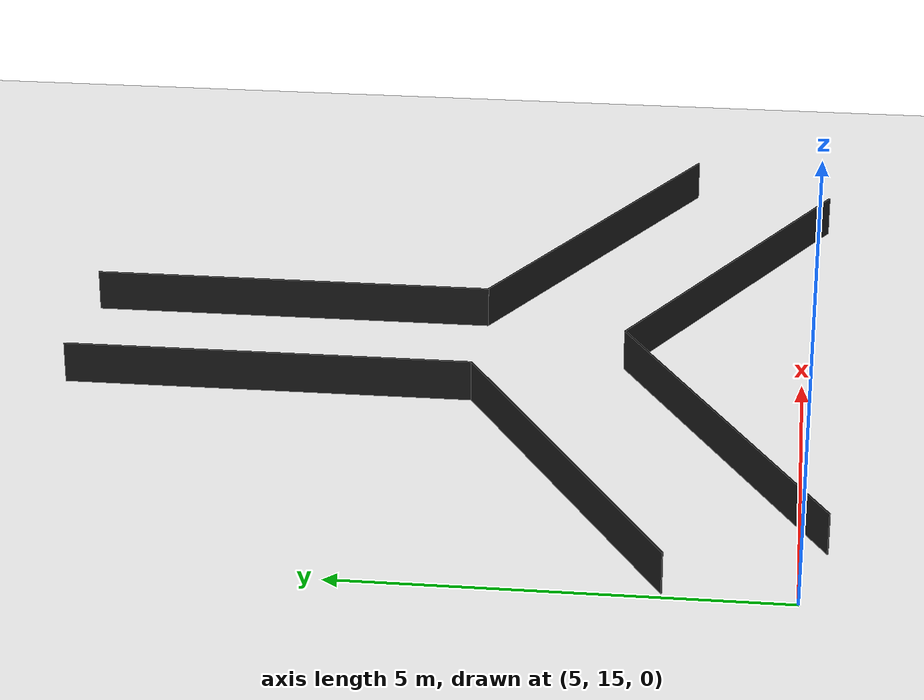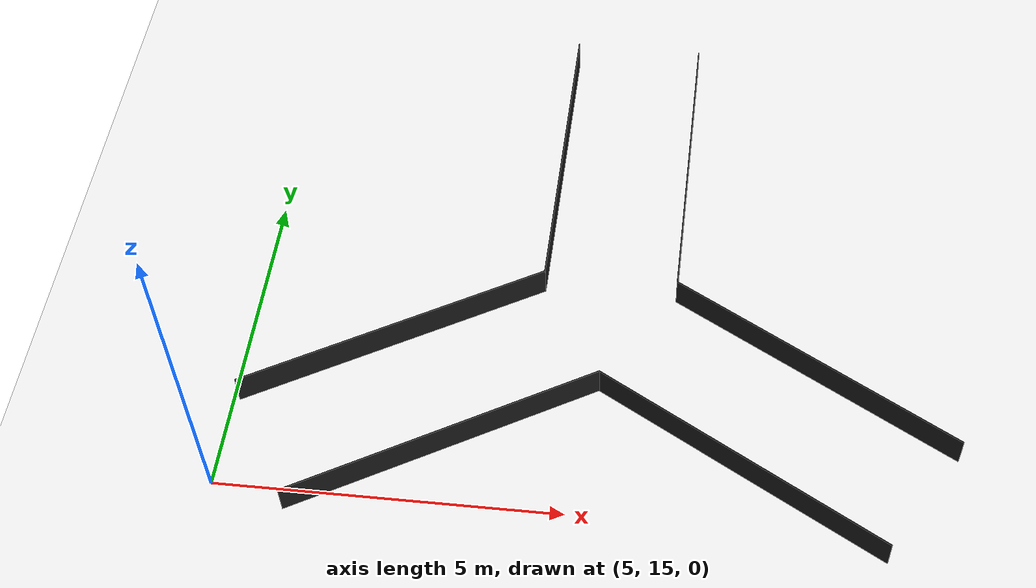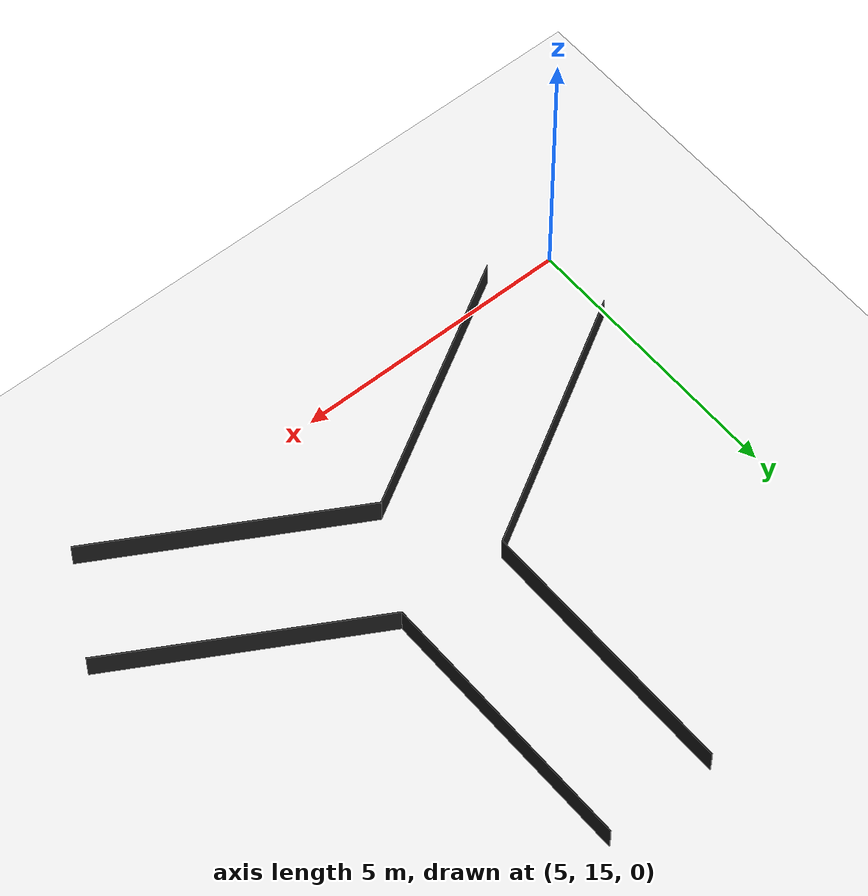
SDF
<sdf version="1.6">
 <world name="default">
  <model name="ground_plane">
   <static>1</static>
   <link name="link">
    <collision name="collision">
     <geometry><plane><normal>0 0 1</normal><size>100 100</size></plane></geometry>
     <surface><friction><ode><mu>100</mu><mu2>50</mu2></ode></friction></surface>
    </collision>
    <visual name="visual">
     <cast_shadows>0</cast_shadows>
     <geometry><plane><normal>0 0 1</normal><size>100 100</size></plane></geometry>
     <material>
      <script><uri>file://media/materials/scripts/gazebo.material</uri><name>Gazebo/White</name></script>
     </material>
    </visual>
   </link>
  </model>
  <model name="T_camber_mod">
   <link name="link">
    <inertial>
     <mass>1</mass>
     <inertia>
      <ixx>0.166667</ixx>
      <ixy>0</ixy>
      <ixz>0</ixz>
      <iyy>0.166667</iyy>
      <iyz>0</iyz>
      <izz>0.166667</izz>
     </inertia>
    </inertial>
    <pose>8.67982 0.164587 0 0 -0 0</pose>
    <visual name="ModelPreview_1::link::visual_2">
     <geometry><box><size>0.015 4.8453 0.5</size></box></geometry>
     <material>
      <script><name>Gazebo/FlatBlack</name><uri>file://media/materials/scripts/gazebo.material</uri></script>
      <shader type="pixel"><normal_map>__default__</normal_map></shader>
      <ambient>0.1 0.1 0.1 1</ambient>
      <diffuse>0.1 0.1 0.1 1</diffuse>
      <specular>0.01 0.01 0.01 1</specular>
      <emissive>0 0 0 1</emissive>
     </material>
     <pose>2 0 0 0 -0 0</pose>
    </visual>
    <visual name="visual">
     <geometry><box><size>0.015 4.8453 0.5</size></box></geometry>
     <material>
      <script><name>Gazebo/FlatBlack</name><uri>file://media/materials/scripts/gazebo.material</uri></script>
      <shader type="pixel"><normal_map>__default__</normal_map></shader>
      <ambient>0.1 0.1 0.1 1</ambient>
      <diffuse>0.1 0.1 0.1 1</diffuse>
      <specular>0.01 0.01 0.01 1</specular>
      <emissive>0 0 0 1</emissive>
     </material>
    </visual>
    <collision name="collision">
     <geometry><box><size>0.015 4.8453 0.5</size></box></geometry>
     <surface>
      <friction>
       <ode><mu>1</mu><mu2>1</mu2><fdir1>0 0 0</fdir1><slip1>0</slip1><slip2>0</slip2></ode>
       <torsional>
        <coefficient>1</coefficient>
        <patch_radius>0</patch_radius>
        <surface_radius>0</surface_radius>
        <use_patch_radius>1</use_patch_radius>
        <ode><slip>0</slip></ode>
       </torsional>
      </friction>
      <bounce><restitution_coefficient>0</restitution_coefficient><threshold>1e+06</threshold></bounce>
      <contact>
       <collide_without_contact>0</collide_without_contact>
       <collide_without_contact_bitmask>1</collide_without_contact_bitmask>
       <collide_bitmask>1</collide_bitmask>
       <ode>
        <soft_cfm>0</soft_cfm>
        <soft_erp>0.2</soft_erp>
        <kp>1e+13</kp>
        <kd>1</kd>
        <max_vel>0.01</max_vel>
        <min_depth>0</min_depth>
       </ode>
       <bullet>
        <split_impulse>1</split_impulse>
        <split_impulse_penetration_threshold>-0.01</split_impulse_penetration_threshold>
        <soft_cfm>0</soft_cfm>
        <soft_erp>0.2</soft_erp>
        <kp>1e+13</kp>
        <kd>1</kd>
       </bullet>
      </contact>
     </surface>
    </collision>
    <collision name="collision_1">
     <pose>2 0 0 0 -0 0</pose>
     <geometry><box><size>0.015 4.8453 0.5</size></box></geometry>
     <surface>
      <friction>
       <ode><mu>1</mu><mu2>1</mu2><fdir1>0 0 0</fdir1><slip1>0</slip1><slip2>0</slip2></ode>
       <torsional>
        <coefficient>1</coefficient>
        <patch_radius>0</patch_radius>
        <surface_radius>0</surface_radius>
        <use_patch_radius>1</use_patch_radius>
        <ode><slip>0</slip></ode>
       </torsional>
      </friction>
      <bounce><restitution_coefficient>0</restitution_coefficient><threshold>1e+06</threshold></bounce>
      <contact>
       <collide_without_contact>0</collide_without_contact>
       <collide_without_contact_bitmask>1</collide_without_contact_bitmask>
       <collide_bitmask>1</collide_bitmask>
       <ode>
        <soft_cfm>0</soft_cfm>
        <soft_erp>0.2</soft_erp>
        <kp>1e+13</kp>
        <kd>1</kd>
        <max_vel>0.01</max_vel>
        <min_depth>0</min_depth>
       </ode>
       <bullet>
        <split_impulse>1</split_impulse>
        <split_impulse_penetration_threshold>-0.01</split_impulse_penetration_threshold>
        <soft_cfm>0</soft_cfm>
        <soft_erp>0.2</soft_erp>
        <kp>1e+13</kp>
        <kd>1</kd>
       </bullet>
      </contact>
     </surface>
    </collision>
   </link>
   <link name="link_clone_0_clone">
    <inertial>
     <mass>1</mass>
     <inertia>
      <ixx>0.166667</ixx>
      <ixy>0</ixy>
      <ixz>0</ixz>
      <iyy>0.166667</iyy>
      <iyz>0</iyz>
      <izz>0.166667</izz>
     </inertia>
    </inertial>
    <pose>12.7746 -3.46264 0 5e-06 -0 -2.0944</pose>
    <visual name="visual_2">
     <geometry><box><size>0.015 4.8453 0.5</size></box></geometry>
     <material>
      <script><name>Gazebo/FlatBlack</name><uri>file://media/materials/scripts/gazebo.material</uri></script>
      <shader type="pixel"><normal_map>__default__</normal_map></shader>
      <ambient>0.1 0.1 0.1 1</ambient>
      <diffuse>0.1 0.1 0.1 1</diffuse>
      <specular>0.01 0.01 0.01 1</specular>
      <emissive>0 0 0 1</emissive>
     </material>
     <pose>2 0 0 0 -0 0</pose>
    </visual>
    <visual name="visual">
     <geometry><box><size>0.015 4.8453 0.5</size></box></geometry>
     <material>
      <script><name>Gazebo/FlatBlack</name><uri>file://media/materials/scripts/gazebo.material</uri></script>
      <shader type="pixel"><normal_map>__default__</normal_map></shader>
      <ambient>0.1 0.1 0.1 1</ambient>
      <diffuse>0.1 0.1 0.1 1</diffuse>
      <specular>0.01 0.01 0.01 1</specular>
      <emissive>0 0 0 1</emissive>
     </material>
    </visual>
    <collision name="collision">
     <geometry><box><size>0.015 4.8453 0.5</size></box></geometry>
     <surface>
      <friction>
       <ode><mu>1</mu><mu2>1</mu2><fdir1>0 0 0</fdir1><slip1>0</slip1><slip2>0</slip2></ode>
       <torsional>
        <coefficient>1</coefficient>
        <patch_radius>0</patch_radius>
        <surface_radius>0</surface_radius>
        <use_patch_radius>1</use_patch_radius>
        <ode><slip>0</slip></ode>
       </torsional>
      </friction>
      <bounce><restitution_coefficient>0</restitution_coefficient><threshold>1e+06</threshold></bounce>
      <contact>
       <collide_without_contact>0</collide_without_contact>
       <collide_without_contact_bitmask>1</collide_without_contact_bitmask>
       <collide_bitmask>1</collide_bitmask>
       <ode>
        <soft_cfm>0</soft_cfm>
        <soft_erp>0.2</soft_erp>
        <kp>1e+13</kp>
        <kd>1</kd>
        <max_vel>0.01</max_vel>
        <min_depth>0</min_depth>
       </ode>
       <bullet>
        <split_impulse>1</split_impulse>
        <split_impulse_penetration_threshold>-0.01</split_impulse_penetration_threshold>
        <soft_cfm>0</soft_cfm>
        <soft_erp>0.2</soft_erp>
        <kp>1e+13</kp>
        <kd>1</kd>
       </bullet>
      </contact>
     </surface>
    </collision>
    <collision name="collision_1">
     <pose>2 0 0 0 -0 0</pose>
     <geometry><box><size>0.015 4.8453 0.5</size></box></geometry>
     <surface>
      <friction>
       <ode><mu>1</mu><mu2>1</mu2><fdir1>0 0 0</fdir1><slip1>0</slip1><slip2>0</slip2></ode>
       <torsional>
        <coefficient>1</coefficient>
        <patch_radius>0</patch_radius>
        <surface_radius>0</surface_radius>
        <use_patch_radius>1</use_patch_radius>
        <ode><slip>0</slip></ode>
       </torsional>
      </friction>
      <bounce><restitution_coefficient>0</restitution_coefficient><threshold>1e+06</threshold></bounce>
      <contact>
       <collide_without_contact>0</collide_without_contact>
       <collide_without_contact_bitmask>1</collide_without_contact_bitmask>
       <collide_bitmask>1</collide_bitmask>
       <ode>
        <soft_cfm>0</soft_cfm>
        <soft_erp>0.2</soft_erp>
        <kp>1e+13</kp>
        <kd>1</kd>
        <max_vel>0.01</max_vel>
        <min_depth>0</min_depth>
       </ode>
       <bullet>
        <split_impulse>1</split_impulse>
        <split_impulse_penetration_threshold>-0.01</split_impulse_penetration_threshold>
        <soft_cfm>0</soft_cfm>
        <soft_erp>0.2</soft_erp>
        <kp>1e+13</kp>
        <kd>1</kd>
       </bullet>
      </contact>
     </surface>
    </collision>
   </link>
   <link name="link_clone_clone">
    <inertial>
     <mass>1</mass>
     <inertia>
      <ixx>0.166667</ixx>
      <ixy>0</ixy>
      <ixz>0</ixz>
      <iyy>0.166667</iyy>
      <iyz>0</iyz>
      <izz>0.166667</izz>
     </inertia>
    </inertial>
    <pose>7.58495 -5.19374 0 5e-06 -0 2.0944</pose>
    <visual name="visual_2">
     <geometry><box><size>0.015 4.8453 0.5</size></box></geometry>
     <material>
      <script><name>Gazebo/FlatBlack</name><uri>file://media/materials/scripts/gazebo.material</uri></script>
      <shader type="pixel"><normal_map>__default__</normal_map></shader>
      <ambient>0.1 0.1 0.1 1</ambient>
      <diffuse>0.1 0.1 0.1 1</diffuse>
      <specular>0.01 0.01 0.01 1</specular>
      <emissive>0 0 0 1</emissive>
     </material>
     <pose>2 0 0 0 -0 0</pose>
    </visual>
    <visual name="visual">
     <geometry><box><size>0.015 4.8453 0.5</size></box></geometry>
     <material>
      <script><name>Gazebo/FlatBlack</name><uri>file://media/materials/scripts/gazebo.material</uri></script>
      <shader type="pixel"><normal_map>__default__</normal_map></shader>
      <ambient>0.1 0.1 0.1 1</ambient>
      <diffuse>0.1 0.1 0.1 1</diffuse>
      <specular>0.01 0.01 0.01 1</specular>
      <emissive>0 0 0 1</emissive>
     </material>
    </visual>
    <collision name="collision">
     <geometry><box><size>0.015 4.8453 0.5</size></box></geometry>
     <surface>
      <friction>
       <ode><mu>1</mu><mu2>1</mu2><fdir1>0 0 0</fdir1><slip1>0</slip1><slip2>0</slip2></ode>
       <torsional>
        <coefficient>1</coefficient>
        <patch_radius>0</patch_radius>
        <surface_radius>0</surface_radius>
        <use_patch_radius>1</use_patch_radius>
        <ode><slip>0</slip></ode>
       </torsional>
      </friction>
      <bounce><restitution_coefficient>0</restitution_coefficient><threshold>1e+06</threshold></bounce>
      <contact>
       <collide_without_contact>0</collide_without_contact>
       <collide_without_contact_bitmask>1</collide_without_contact_bitmask>
       <collide_bitmask>1</collide_bitmask>
       <ode>
        <soft_cfm>0</soft_cfm>
        <soft_erp>0.2</soft_erp>
        <kp>1e+13</kp>
        <kd>1</kd>
        <max_vel>0.01</max_vel>
        <min_depth>0</min_depth>
       </ode>
       <bullet>
        <split_impulse>1</split_impulse>
        <split_impulse_penetration_threshold>-0.01</split_impulse_penetration_threshold>
        <soft_cfm>0</soft_cfm>
        <soft_erp>0.2</soft_erp>
        <kp>1e+13</kp>
        <kd>1</kd>
       </bullet>
      </contact>
     </surface>
    </collision>
    <collision name="collision_1">
     <pose>2 0 0 0 -0 0</pose>
     <geometry><box><size>0.015 4.8453 0.5</size></box></geometry>
     <surface>
      <friction>
       <ode><mu>1</mu><mu2>1</mu2><fdir1>0 0 0</fdir1><slip1>0</slip1><slip2>0</slip2></ode>
       <torsional>
        <coefficient>1</coefficient>
        <patch_radius>0</patch_radius>
        <surface_radius>0</surface_radius>
        <use_patch_radius>1</use_patch_radius>
        <ode><slip>0</slip></ode>
       </torsional>
      </friction>
      <bounce><restitution_coefficient>0</restitution_coefficient><threshold>1e+06</threshold></bounce>
      <contact>
       <collide_without_contact>0</collide_without_contact>
       <collide_without_contact_bitmask>1</collide_without_contact_bitmask>
       <collide_bitmask>1</collide_bitmask>
       <ode>
        <soft_cfm>0</soft_cfm>
        <soft_erp>0.2</soft_erp>
        <kp>1e+13</kp>
        <kd>1</kd>
        <max_vel>0.01</max_vel>
        <min_depth>0</min_depth>
       </ode>
       <bullet>
        <split_impulse>1</split_impulse>
        <split_impulse_penetration_threshold>-0.01</split_impulse_penetration_threshold>
        <soft_cfm>0</soft_cfm>
        <soft_erp>0.2</soft_erp>
        <kp>1e+13</kp>
        <kd>1</kd>
       </bullet>
      </contact>
     </surface>
    </collision>
   </link>
   <static>1</static>
   <pose>0.58953 21.1021 0.25 0 -0 0</pose>
  </model>
 </world>
</sdf>
